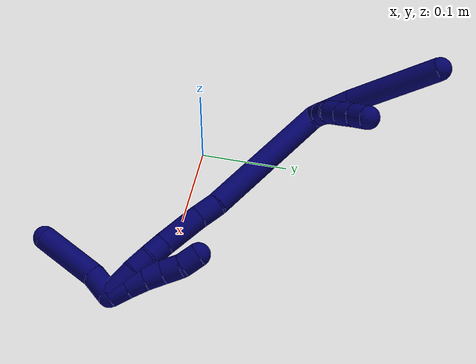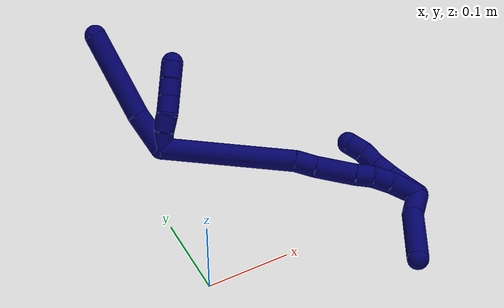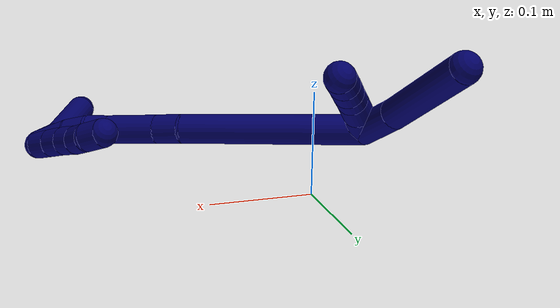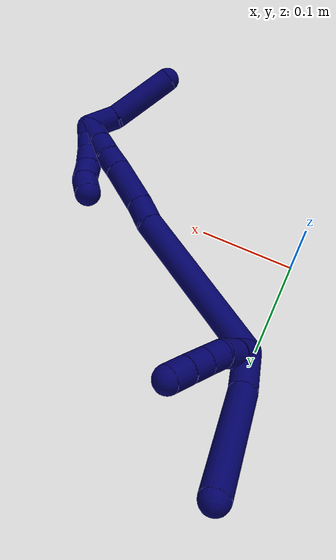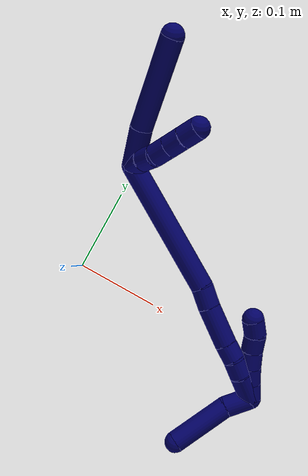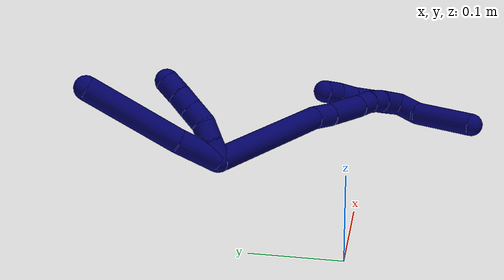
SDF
<sdf version="1.7">
 <world name="default">
  <model name="7">
   <static>0</static>
   <link name="7">
    <collision name="collision-cylinder-e_1_2_8">
     <pose>0.001279 0.004385 0.022501 -0.192452 0.055724 -0.00538</pose>
     <geometry><cylinder><radius>0.0125</radius><length>0.04592</length></cylinder></geometry>
     <surface>
      <friction><ode><mu>1.16</mu><mu2>1.16</mu2><slip1>0</slip1><slip2>0</slip2></ode></friction>
      <contact><ode><kp>1e+06</kp><kd>1</kd><max_vel>0</max_vel><min_depth>0.001</min_depth></ode></contact>
     </surface>
    </collision>
    <visual name="visual-cylinder-e_1_2_8">
     <pose>0.001279 0.004385 0.022501 -0.192452 0.055724 -0.00538</pose>
     <geometry><cylinder><radius>0.0125</radius><length>0.04592</length></cylinder></geometry>
     <material><ambient>0.003922 0 0.403922 1</ambient></material>
    </visual>
    <collision name="collision-cylinder-e_2_8_6">
     <pose>0.010629 0.015922 0.095912 -0.139584 0.155733 -0.010909</pose>
     <geometry><cylinder><radius>0.0125</radius><length>0.10408</length></cylinder></geometry>
     <surface>
      <friction><ode><mu>1.16</mu><mu2>1.16</mu2><slip1>0</slip1><slip2>0</slip2></ode></friction>
      <contact><ode><kp>1e+06</kp><kd>1</kd><max_vel>0</max_vel><min_depth>0.001</min_depth></ode></contact>
     </surface>
    </collision>
    <visual name="visual-cylinder-e_2_8_6">
     <pose>0.010629 0.015922 0.095912 -0.139584 0.155733 -0.010909</pose>
     <geometry><cylinder><radius>0.0125</radius><length>0.10408</length></cylinder></geometry>
     <material><ambient>0.003922 0 0.403922 1</ambient></material>
    </visual>
    <collision name="collision-cylinder-e_1_2_9">
     <pose>0.004275 -0.004473 0.007856 0.517607 0.441761 0.118752</pose>
     <geometry><cylinder><radius>0.0125</radius><length>0.02</length></cylinder></geometry>
     <surface>
      <friction><ode><mu>1.16</mu><mu2>1.16</mu2><slip1>0</slip1><slip2>0</slip2></ode></friction>
      <contact><ode><kp>1e+06</kp><kd>1</kd><max_vel>0</max_vel><min_depth>0.001</min_depth></ode></contact>
     </surface>
    </collision>
    <visual name="visual-cylinder-e_1_2_9">
     <pose>0.004275 -0.004473 0.007856 0.517607 0.441761 0.118752</pose>
     <geometry><cylinder><radius>0.0125</radius><length>0.02</length></cylinder></geometry>
     <material><ambient>0.003922 0 0.403922 1</ambient></material>
    </visual>
    <collision name="collision-cylinder-e_2_9_10">
     <pose>0.013868 -0.013373 0.022932 0.549982 0.560629 0.162097</pose>
     <geometry><cylinder><radius>0.0125</radius><length>0.02</length></cylinder></geometry>
     <surface>
      <friction><ode><mu>1.16</mu><mu2>1.16</mu2><slip1>0</slip1><slip2>0</slip2></ode></friction>
      <contact><ode><kp>1e+06</kp><kd>1</kd><max_vel>0</max_vel><min_depth>0.001</min_depth></ode></contact>
     </surface>
    </collision>
    <visual name="visual-cylinder-e_2_9_10">
     <pose>0.013868 -0.013373 0.022932 0.549982 0.560629 0.162097</pose>
     <geometry><cylinder><radius>0.0125</radius><length>0.02</length></cylinder></geometry>
     <material><ambient>0.003922 0 0.403922 1</ambient></material>
    </visual>
    <collision name="collision-cylinder-e_3_10_11">
     <pose>0.025499 -0.01904 0.037807 0.160737 0.683345 0.057269</pose>
     <geometry><cylinder><radius>0.0125</radius><length>0.02</length></cylinder></geometry>
     <surface>
      <friction><ode><mu>1.16</mu><mu2>1.16</mu2><slip1>0</slip1><slip2>0</slip2></ode></friction>
      <contact><ode><kp>1e+06</kp><kd>1</kd><max_vel>0</max_vel><min_depth>0.001</min_depth></ode></contact>
     </surface>
    </collision>
    <visual name="visual-cylinder-e_3_10_11">
     <pose>0.025499 -0.01904 0.037807 0.160737 0.683345 0.057269</pose>
     <geometry><cylinder><radius>0.0125</radius><length>0.02</length></cylinder></geometry>
     <material><ambient>0.003922 0 0.403922 1</ambient></material>
    </visual>
    <collision name="collision-cylinder-e_4_11_12">
     <pose>0.038018 -0.021618 0.053189 0.171313 0.669418 0.05971</pose>
     <geometry><cylinder><radius>0.0125</radius><length>0.02</length></cylinder></geometry>
     <surface>
      <friction><ode><mu>1.16</mu><mu2>1.16</mu2><slip1>0</slip1><slip2>0</slip2></ode></friction>
      <contact><ode><kp>1e+06</kp><kd>1</kd><max_vel>0</max_vel><min_depth>0.001</min_depth></ode></contact>
     </surface>
    </collision>
    <visual name="visual-cylinder-e_4_11_12">
     <pose>0.038018 -0.021618 0.053189 0.171313 0.669418 0.05971</pose>
     <geometry><cylinder><radius>0.0125</radius><length>0.02</length></cylinder></geometry>
     <material><ambient>0.003922 0 0.403922 1</ambient></material>
    </visual>
    <collision name="collision-cylinder-e_5_12_5">
     <pose>0.050671 -0.023869 0.068505 0.11986 0.700642 0.043841</pose>
     <geometry><cylinder><radius>0.0125</radius><length>0.02</length></cylinder></geometry>
     <surface>
      <friction><ode><mu>1.16</mu><mu2>1.16</mu2><slip1>0</slip1><slip2>0</slip2></ode></friction>
      <contact><ode><kp>1e+06</kp><kd>1</kd><max_vel>0</max_vel><min_depth>0.001</min_depth></ode></contact>
     </surface>
    </collision>
    <visual name="visual-cylinder-e_5_12_5">
     <pose>0.050671 -0.023869 0.068505 0.11986 0.700642 0.043841</pose>
     <geometry><cylinder><radius>0.0125</radius><length>0.02</length></cylinder></geometry>
     <material><ambient>0.003922 0 0.403922 1</ambient></material>
    </visual>
    <collision name="collision-cylinder-e_1_2_13">
     <pose>0.045964 -0.042192 -0.044862 2.38686 0.641159 1.39462</pose>
     <geometry><cylinder><radius>0.0125</radius><length>0.153694</length></cylinder></geometry>
     <surface>
      <friction><ode><mu>1.16</mu><mu2>1.16</mu2><slip1>0</slip1><slip2>0</slip2></ode></friction>
      <contact><ode><kp>1e+06</kp><kd>1</kd><max_vel>0</max_vel><min_depth>0.001</min_depth></ode></contact>
     </surface>
    </collision>
    <visual name="visual-cylinder-e_1_2_13">
     <pose>0.045964 -0.042192 -0.044862 2.38686 0.641159 1.39462</pose>
     <geometry><cylinder><radius>0.0125</radius><length>0.153694</length></cylinder></geometry>
     <material><ambient>0.003922 0 0.403922 1</ambient></material>
    </visual>
    <collision name="collision-cylinder-e_2_13_14">
     <pose>0.097332 -0.090824 -0.098284 2.49652 0.467224 1.23748</pose>
     <geometry><cylinder><radius>0.0125</radius><length>0.023995</length></cylinder></geometry>
     <surface>
      <friction><ode><mu>1.16</mu><mu2>1.16</mu2><slip1>0</slip1><slip2>0</slip2></ode></friction>
      <contact><ode><kp>1e+06</kp><kd>1</kd><max_vel>0</max_vel><min_depth>0.001</min_depth></ode></contact>
     </surface>
    </collision>
    <visual name="visual-cylinder-e_2_13_14">
     <pose>0.097332 -0.090824 -0.098284 2.49652 0.467224 1.23748</pose>
     <geometry><cylinder><radius>0.0125</radius><length>0.023995</length></cylinder></geometry>
     <material><ambient>0.003922 0 0.403922 1</ambient></material>
    </visual>
    <collision name="collision-cylinder-e_3_14_15">
     <pose>0.114879 -0.109909 -0.12215 2.45115 0.548924 1.32851</pose>
     <geometry><cylinder><radius>0.0125</radius><length>0.046547</length></cylinder></geometry>
     <surface>
      <friction><ode><mu>1.16</mu><mu2>1.16</mu2><slip1>0</slip1><slip2>0</slip2></ode></friction>
      <contact><ode><kp>1e+06</kp><kd>1</kd><max_vel>0</max_vel><min_depth>0.001</min_depth></ode></contact>
     </surface>
    </collision>
    <visual name="visual-cylinder-e_3_14_15">
     <pose>0.114879 -0.109909 -0.12215 2.45115 0.548924 1.32851</pose>
     <geometry><cylinder><radius>0.0125</radius><length>0.046547</length></cylinder></geometry>
     <material><ambient>0.003922 0 0.403922 1</ambient></material>
    </visual>
    <collision name="collision-cylinder-e_4_15_16">
     <pose>0.132799 -0.128173 -0.143526 2.39467 0.609703 1.35315</pose>
     <geometry><cylinder><radius>0.0125</radius><length>0.020177</length></cylinder></geometry>
     <surface>
      <friction><ode><mu>1.16</mu><mu2>1.16</mu2><slip1>0</slip1><slip2>0</slip2></ode></friction>
      <contact><ode><kp>1e+06</kp><kd>1</kd><max_vel>0</max_vel><min_depth>0.001</min_depth></ode></contact>
     </surface>
    </collision>
    <visual name="visual-cylinder-e_4_15_16">
     <pose>0.132799 -0.128173 -0.143526 2.39467 0.609703 1.35315</pose>
     <geometry><cylinder><radius>0.0125</radius><length>0.020177</length></cylinder></geometry>
     <material><ambient>0.003922 0 0.403922 1</ambient></material>
    </visual>
    <collision name="collision-cylinder-e_5_16_17">
     <pose>0.143745 -0.13809 -0.157382 2.63726 0.526375 1.61552</pose>
     <geometry><cylinder><radius>0.0125</radius><length>0.020575</length></cylinder></geometry>
     <surface>
      <friction><ode><mu>1.16</mu><mu2>1.16</mu2><slip1>0</slip1><slip2>0</slip2></ode></friction>
      <contact><ode><kp>1e+06</kp><kd>1</kd><max_vel>0</max_vel><min_depth>0.001</min_depth></ode></contact>
     </surface>
    </collision>
    <visual name="visual-cylinder-e_5_16_17">
     <pose>0.143745 -0.13809 -0.157382 2.63726 0.526375 1.61552</pose>
     <geometry><cylinder><radius>0.0125</radius><length>0.020575</length></cylinder></geometry>
     <material><ambient>0.003922 0 0.403922 1</ambient></material>
    </visual>
    <collision name="collision-cylinder-e_6_17_1">
     <pose>0.157692 -0.147224 -0.179523 2.81665 0.525297 2.0466</pose>
     <geometry><cylinder><radius>0.0125</radius><length>0.035013</length></cylinder></geometry>
     <surface>
      <friction><ode><mu>1.16</mu><mu2>1.16</mu2><slip1>0</slip1><slip2>0</slip2></ode></friction>
      <contact><ode><kp>1e+06</kp><kd>1</kd><max_vel>0</max_vel><min_depth>0.001</min_depth></ode></contact>
     </surface>
    </collision>
    <visual name="visual-cylinder-e_6_17_1">
     <pose>0.157692 -0.147224 -0.179523 2.81665 0.525297 2.0466</pose>
     <geometry><cylinder><radius>0.0125</radius><length>0.035013</length></cylinder></geometry>
     <material><ambient>0.003922 0 0.403922 1</ambient></material>
    </visual>
    <collision name="collision-cylinder-e_1_1_18">
     <pose>0.164446 -0.147595 -0.18516 -0.473261 -0.203913 0.049335</pose>
     <geometry><cylinder><radius>0.0125</radius><length>0.02</length></cylinder></geometry>
     <surface>
      <friction><ode><mu>1.16</mu><mu2>1.16</mu2><slip1>0</slip1><slip2>0</slip2></ode></friction>
      <contact><ode><kp>1e+06</kp><kd>1</kd><max_vel>0</max_vel><min_depth>0.001</min_depth></ode></contact>
     </surface>
    </collision>
    <visual name="visual-cylinder-e_1_1_18">
     <pose>0.164446 -0.147595 -0.18516 -0.473261 -0.203913 0.049335</pose>
     <geometry><cylinder><radius>0.0125</radius><length>0.02</length></cylinder></geometry>
     <material><ambient>0.003922 0 0.403922 1</ambient></material>
    </visual>
    <collision name="collision-cylinder-e_2_18_19">
     <pose>0.160903 -0.138812 -0.167553 -0.452325 -0.152376 0.035126</pose>
     <geometry><cylinder><radius>0.0125</radius><length>0.02</length></cylinder></geometry>
     <surface>
      <friction><ode><mu>1.16</mu><mu2>1.16</mu2><slip1>0</slip1><slip2>0</slip2></ode></friction>
      <contact><ode><kp>1e+06</kp><kd>1</kd><max_vel>0</max_vel><min_depth>0.001</min_depth></ode></contact>
     </surface>
    </collision>
    <visual name="visual-cylinder-e_2_18_19">
     <pose>0.160903 -0.138812 -0.167553 -0.452325 -0.152376 0.035126</pose>
     <geometry><cylinder><radius>0.0125</radius><length>0.02</length></cylinder></geometry>
     <material><ambient>0.003922 0 0.403922 1</ambient></material>
    </visual>
    <collision name="collision-cylinder-e_3_19_20">
     <pose>0.158654 -0.129838 -0.149842 -0.48552 -0.07317 0.018128</pose>
     <geometry><cylinder><radius>0.0125</radius><length>0.02</length></cylinder></geometry>
     <surface>
      <friction><ode><mu>1.16</mu><mu2>1.16</mu2><slip1>0</slip1><slip2>0</slip2></ode></friction>
      <contact><ode><kp>1e+06</kp><kd>1</kd><max_vel>0</max_vel><min_depth>0.001</min_depth></ode></contact>
     </surface>
    </collision>
    <visual name="visual-cylinder-e_3_19_20">
     <pose>0.158654 -0.129838 -0.149842 -0.48552 -0.07317 0.018128</pose>
     <geometry><cylinder><radius>0.0125</radius><length>0.02</length></cylinder></geometry>
     <material><ambient>0.003922 0 0.403922 1</ambient></material>
    </visual>
    <collision name="collision-cylinder-e_4_20_21">
     <pose>0.157898 -0.121496 -0.131727 -0.377725 -0.00245 0.000468</pose>
     <geometry><cylinder><radius>0.0125</radius><length>0.02</length></cylinder></geometry>
     <surface>
      <friction><ode><mu>1.16</mu><mu2>1.16</mu2><slip1>0</slip1><slip2>0</slip2></ode></friction>
      <contact><ode><kp>1e+06</kp><kd>1</kd><max_vel>0</max_vel><min_depth>0.001</min_depth></ode></contact>
     </surface>
    </collision>
    <visual name="visual-cylinder-e_4_20_21">
     <pose>0.157898 -0.121496 -0.131727 -0.377725 -0.00245 0.000468</pose>
     <geometry><cylinder><radius>0.0125</radius><length>0.02</length></cylinder></geometry>
     <material><ambient>0.003922 0 0.403922 1</ambient></material>
    </visual>
    <collision name="collision-cylinder-e_5_21_4">
     <pose>0.154712 -0.114093 -0.113702 -0.402341 -0.321708 0.066153</pose>
     <geometry><cylinder><radius>0.0125</radius><length>0.02</length></cylinder></geometry>
     <surface>
      <friction><ode><mu>1.16</mu><mu2>1.16</mu2><slip1>0</slip1><slip2>0</slip2></ode></friction>
      <contact><ode><kp>1e+06</kp><kd>1</kd><max_vel>0</max_vel><min_depth>0.001</min_depth></ode></contact>
     </surface>
    </collision>
    <visual name="visual-cylinder-e_5_21_4">
     <pose>0.154712 -0.114093 -0.113702 -0.402341 -0.321708 0.066153</pose>
     <geometry><cylinder><radius>0.0125</radius><length>0.02</length></cylinder></geometry>
     <material><ambient>0.003922 0 0.403922 1</ambient></material>
    </visual>
    <collision name="collision-cylinder-e_1_1_22">
     <pose>0.152928 -0.155178 -0.200122 2.67847 -1.09483 -2.4034</pose>
     <geometry><cylinder><radius>0.0125</radius><length>0.030472</length></cylinder></geometry>
     <surface>
      <friction><ode><mu>1.16</mu><mu2>1.16</mu2><slip1>0</slip1><slip2>0</slip2></ode></friction>
      <contact><ode><kp>1e+06</kp><kd>1</kd><max_vel>0</max_vel><min_depth>0.001</min_depth></ode></contact>
     </surface>
    </collision>
    <visual name="visual-cylinder-e_1_1_22">
     <pose>0.152928 -0.155178 -0.200122 2.67847 -1.09483 -2.4034</pose>
     <geometry><cylinder><radius>0.0125</radius><length>0.030472</length></cylinder></geometry>
     <material><ambient>0.003922 0 0.403922 1</ambient></material>
    </visual>
    <collision name="collision-cylinder-e_2_22_3">
     <pose>0.112982 -0.173379 -0.223217 2.41147 -0.862554 -1.7554</pose>
     <geometry><cylinder><radius>0.0125</radius><length>0.069528</length></cylinder></geometry>
     <surface>
      <friction><ode><mu>1.16</mu><mu2>1.16</mu2><slip1>0</slip1><slip2>0</slip2></ode></friction>
      <contact><ode><kp>1e+06</kp><kd>1</kd><max_vel>0</max_vel><min_depth>0.001</min_depth></ode></contact>
     </surface>
    </collision>
    <visual name="visual-cylinder-e_2_22_3">
     <pose>0.112982 -0.173379 -0.223217 2.41147 -0.862554 -1.7554</pose>
     <geometry><cylinder><radius>0.0125</radius><length>0.069528</length></cylinder></geometry>
     <material><ambient>0.003922 0 0.403922 1</ambient></material>
    </visual>
    <collision name="collision-sphere-3">
     <pose>0.086579 -0.188462 -0.240066 0 -0 0</pose>
     <geometry><sphere><radius>0.0125</radius></sphere></geometry>
     <surface>
      <friction><ode><mu>1.16</mu><mu2>1.16</mu2><slip1>0</slip1><slip2>0</slip2></ode></friction>
      <contact><ode><kp>1e+06</kp><kd>1</kd><max_vel>0</max_vel><min_depth>0.001</min_depth></ode></contact>
     </surface>
    </collision>
    <visual name="visual-sphere-3">
     <pose>0.086579 -0.188462 -0.240066 0 -0 0</pose>
     <geometry><sphere><radius>0.0125</radius></sphere></geometry>
     <material><ambient>0.003922 0 0.403922 1</ambient></material>
    </visual>
    <collision name="collision-sphere-22">
     <pose>0.139386 -0.158296 -0.206367 0 -0 0</pose>
     <geometry><sphere><radius>0.0125</radius></sphere></geometry>
     <surface>
      <friction><ode><mu>1.16</mu><mu2>1.16</mu2><slip1>0</slip1><slip2>0</slip2></ode></friction>
      <contact><ode><kp>1e+06</kp><kd>1</kd><max_vel>0</max_vel><min_depth>0.001</min_depth></ode></contact>
     </surface>
    </collision>
    <visual name="visual-sphere-22">
     <pose>0.139386 -0.158296 -0.206367 0 -0 0</pose>
     <geometry><sphere><radius>0.0125</radius></sphere></geometry>
     <material><ambient>0.003922 0 0.403922 1</ambient></material>
    </visual>
    <collision name="collision-sphere-4">
     <pose>0.15155 -0.110378 -0.104973 0 -0 0</pose>
     <geometry><sphere><radius>0.0125</radius></sphere></geometry>
     <surface>
      <friction><ode><mu>1.16</mu><mu2>1.16</mu2><slip1>0</slip1><slip2>0</slip2></ode></friction>
      <contact><ode><kp>1e+06</kp><kd>1</kd><max_vel>0</max_vel><min_depth>0.001</min_depth></ode></contact>
     </surface>
    </collision>
    <visual name="visual-sphere-4">
     <pose>0.15155 -0.110378 -0.104973 0 -0 0</pose>
     <geometry><sphere><radius>0.0125</radius></sphere></geometry>
     <material><ambient>0.003922 0 0.403922 1</ambient></material>
    </visual>
    <collision name="collision-sphere-21">
     <pose>0.157874 -0.117808 -0.122431 0 -0 0</pose>
     <geometry><sphere><radius>0.0125</radius></sphere></geometry>
     <surface>
      <friction><ode><mu>1.16</mu><mu2>1.16</mu2><slip1>0</slip1><slip2>0</slip2></ode></friction>
      <contact><ode><kp>1e+06</kp><kd>1</kd><max_vel>0</max_vel><min_depth>0.001</min_depth></ode></contact>
     </surface>
    </collision>
    <visual name="visual-sphere-21">
     <pose>0.157874 -0.117808 -0.122431 0 -0 0</pose>
     <geometry><sphere><radius>0.0125</radius></sphere></geometry>
     <material><ambient>0.003922 0 0.403922 1</ambient></material>
    </visual>
    <collision name="collision-sphere-20">
     <pose>0.157923 -0.125184 -0.141022 0 -0 0</pose>
     <geometry><sphere><radius>0.0125</radius></sphere></geometry>
     <surface>
      <friction><ode><mu>1.16</mu><mu2>1.16</mu2><slip1>0</slip1><slip2>0</slip2></ode></friction>
      <contact><ode><kp>1e+06</kp><kd>1</kd><max_vel>0</max_vel><min_depth>0.001</min_depth></ode></contact>
     </surface>
    </collision>
    <visual name="visual-sphere-20">
     <pose>0.157923 -0.125184 -0.141022 0 -0 0</pose>
     <geometry><sphere><radius>0.0125</radius></sphere></geometry>
     <material><ambient>0.003922 0 0.403922 1</ambient></material>
    </visual>
    <collision name="collision-sphere-11">
     <pose>0.031813 -0.020281 0.045462 0 -0 0</pose>
     <geometry><sphere><radius>0.0125</radius></sphere></geometry>
     <surface>
      <friction><ode><mu>1.16</mu><mu2>1.16</mu2><slip1>0</slip1><slip2>0</slip2></ode></friction>
      <contact><ode><kp>1e+06</kp><kd>1</kd><max_vel>0</max_vel><min_depth>0.001</min_depth></ode></contact>
     </surface>
    </collision>
    <visual name="visual-sphere-11">
     <pose>0.031813 -0.020281 0.045462 0 -0 0</pose>
     <geometry><sphere><radius>0.0125</radius></sphere></geometry>
     <material><ambient>0.003922 0 0.403922 1</ambient></material>
    </visual>
    <collision name="collision-sphere-10">
     <pose>0.019185 -0.017799 0.030152 0 -0 0</pose>
     <geometry><sphere><radius>0.0125</radius></sphere></geometry>
     <surface>
      <friction><ode><mu>1.16</mu><mu2>1.16</mu2><slip1>0</slip1><slip2>0</slip2></ode></friction>
      <contact><ode><kp>1e+06</kp><kd>1</kd><max_vel>0</max_vel><min_depth>0.001</min_depth></ode></contact>
     </surface>
    </collision>
    <visual name="visual-sphere-10">
     <pose>0.019185 -0.017799 0.030152 0 -0 0</pose>
     <geometry><sphere><radius>0.0125</radius></sphere></geometry>
     <material><ambient>0.003922 0 0.403922 1</ambient></material>
    </visual>
    <collision name="collision-sphere-6">
     <pose>0.018701 0.023075 0.146823 0 -0 0</pose>
     <geometry><sphere><radius>0.0125</radius></sphere></geometry>
     <surface>
      <friction><ode><mu>1.16</mu><mu2>1.16</mu2><slip1>0</slip1><slip2>0</slip2></ode></friction>
      <contact><ode><kp>1e+06</kp><kd>1</kd><max_vel>0</max_vel><min_depth>0.001</min_depth></ode></contact>
     </surface>
    </collision>
    <visual name="visual-sphere-6">
     <pose>0.018701 0.023075 0.146823 0 -0 0</pose>
     <geometry><sphere><radius>0.0125</radius></sphere></geometry>
     <material><ambient>0.003922 0 0.403922 1</ambient></material>
    </visual>
    <collision name="collision-sphere-9">
     <pose>0.008551 -0.008946 0.015712 0 -0 0</pose>
     <geometry><sphere><radius>0.0125</radius></sphere></geometry>
     <surface>
      <friction><ode><mu>1.16</mu><mu2>1.16</mu2><slip1>0</slip1><slip2>0</slip2></ode></friction>
      <contact><ode><kp>1e+06</kp><kd>1</kd><max_vel>0</max_vel><min_depth>0.001</min_depth></ode></contact>
     </surface>
    </collision>
    <visual name="visual-sphere-9">
     <pose>0.008551 -0.008946 0.015712 0 -0 0</pose>
     <geometry><sphere><radius>0.0125</radius></sphere></geometry>
     <material><ambient>0.003922 0 0.403922 1</ambient></material>
    </visual>
    <collision name="collision-sphere-2">
     <geometry><sphere><radius>0.0125</radius></sphere></geometry>
     <surface>
      <friction><ode><mu>1.16</mu><mu2>1.16</mu2><slip1>0</slip1><slip2>0</slip2></ode></friction>
      <contact><ode><kp>1e+06</kp><kd>1</kd><max_vel>0</max_vel><min_depth>0.001</min_depth></ode></contact>
     </surface>
    </collision>
    <visual name="visual-sphere-2">
     <geometry><sphere><radius>0.0125</radius></sphere></geometry>
     <material><ambient>0.003922 0 0.403922 1</ambient></material>
    </visual>
    <collision name="collision-sphere-19">
     <pose>0.159385 -0.134492 -0.158663 0 -0 0</pose>
     <geometry><sphere><radius>0.0125</radius></sphere></geometry>
     <surface>
      <friction><ode><mu>1.16</mu><mu2>1.16</mu2><slip1>0</slip1><slip2>0</slip2></ode></friction>
      <contact><ode><kp>1e+06</kp><kd>1</kd><max_vel>0</max_vel><min_depth>0.001</min_depth></ode></contact>
     </surface>
    </collision>
    <visual name="visual-sphere-19">
     <pose>0.159385 -0.134492 -0.158663 0 -0 0</pose>
     <geometry><sphere><radius>0.0125</radius></sphere></geometry>
     <material><ambient>0.003922 0 0.403922 1</ambient></material>
    </visual>
    <collision name="collision-sphere-8">
     <pose>0.002558 0.008769 0.045002 0 -0 0</pose>
     <geometry><sphere><radius>0.0125</radius></sphere></geometry>
     <surface>
      <friction><ode><mu>1.16</mu><mu2>1.16</mu2><slip1>0</slip1><slip2>0</slip2></ode></friction>
      <contact><ode><kp>1e+06</kp><kd>1</kd><max_vel>0</max_vel><min_depth>0.001</min_depth></ode></contact>
     </surface>
    </collision>
    <visual name="visual-sphere-8">
     <pose>0.002558 0.008769 0.045002 0 -0 0</pose>
     <geometry><sphere><radius>0.0125</radius></sphere></geometry>
     <material><ambient>0.003922 0 0.403922 1</ambient></material>
    </visual>
    <collision name="collision-sphere-12">
     <pose>0.044223 -0.022955 0.060916 0 -0 0</pose>
     <geometry><sphere><radius>0.0125</radius></sphere></geometry>
     <surface>
      <friction><ode><mu>1.16</mu><mu2>1.16</mu2><slip1>0</slip1><slip2>0</slip2></ode></friction>
      <contact><ode><kp>1e+06</kp><kd>1</kd><max_vel>0</max_vel><min_depth>0.001</min_depth></ode></contact>
     </surface>
    </collision>
    <visual name="visual-sphere-12">
     <pose>0.044223 -0.022955 0.060916 0 -0 0</pose>
     <geometry><sphere><radius>0.0125</radius></sphere></geometry>
     <material><ambient>0.003922 0 0.403922 1</ambient></material>
    </visual>
    <collision name="collision-sphere-5">
     <pose>0.057118 -0.024783 0.076095 0 -0 0</pose>
     <geometry><sphere><radius>0.0125</radius></sphere></geometry>
     <surface>
      <friction><ode><mu>1.16</mu><mu2>1.16</mu2><slip1>0</slip1><slip2>0</slip2></ode></friction>
      <contact><ode><kp>1e+06</kp><kd>1</kd><max_vel>0</max_vel><min_depth>0.001</min_depth></ode></contact>
     </surface>
    </collision>
    <visual name="visual-sphere-5">
     <pose>0.057118 -0.024783 0.076095 0 -0 0</pose>
     <geometry><sphere><radius>0.0125</radius></sphere></geometry>
     <material><ambient>0.003922 0 0.403922 1</ambient></material>
    </visual>
    <collision name="collision-sphere-13">
     <pose>0.091928 -0.084384 -0.089725 0 -0 0</pose>
     <geometry><sphere><radius>0.0125</radius></sphere></geometry>
     <surface>
      <friction><ode><mu>1.16</mu><mu2>1.16</mu2><slip1>0</slip1><slip2>0</slip2></ode></friction>
      <contact><ode><kp>1e+06</kp><kd>1</kd><max_vel>0</max_vel><min_depth>0.001</min_depth></ode></contact>
     </surface>
    </collision>
    <visual name="visual-sphere-13">
     <pose>0.091928 -0.084384 -0.089725 0 -0 0</pose>
     <geometry><sphere><radius>0.0125</radius></sphere></geometry>
     <material><ambient>0.003922 0 0.403922 1</ambient></material>
    </visual>
    <collision name="collision-sphere-14">
     <pose>0.102736 -0.097264 -0.106843 0 -0 0</pose>
     <geometry><sphere><radius>0.0125</radius></sphere></geometry>
     <surface>
      <friction><ode><mu>1.16</mu><mu2>1.16</mu2><slip1>0</slip1><slip2>0</slip2></ode></friction>
      <contact><ode><kp>1e+06</kp><kd>1</kd><max_vel>0</max_vel><min_depth>0.001</min_depth></ode></contact>
     </surface>
    </collision>
    <visual name="visual-sphere-14">
     <pose>0.102736 -0.097264 -0.106843 0 -0 0</pose>
     <geometry><sphere><radius>0.0125</radius></sphere></geometry>
     <material><ambient>0.003922 0 0.403922 1</ambient></material>
    </visual>
    <collision name="collision-sphere-15">
     <pose>0.127023 -0.122554 -0.137457 0 -0 0</pose>
     <geometry><sphere><radius>0.0125</radius></sphere></geometry>
     <surface>
      <friction><ode><mu>1.16</mu><mu2>1.16</mu2><slip1>0</slip1><slip2>0</slip2></ode></friction>
      <contact><ode><kp>1e+06</kp><kd>1</kd><max_vel>0</max_vel><min_depth>0.001</min_depth></ode></contact>
     </surface>
    </collision>
    <visual name="visual-sphere-15">
     <pose>0.127023 -0.122554 -0.137457 0 -0 0</pose>
     <geometry><sphere><radius>0.0125</radius></sphere></geometry>
     <material><ambient>0.003922 0 0.403922 1</ambient></material>
    </visual>
    <collision name="collision-sphere-16">
     <pose>0.138576 -0.133792 -0.149594 0 -0 0</pose>
     <geometry><sphere><radius>0.0125</radius></sphere></geometry>
     <surface>
      <friction><ode><mu>1.16</mu><mu2>1.16</mu2><slip1>0</slip1><slip2>0</slip2></ode></friction>
      <contact><ode><kp>1e+06</kp><kd>1</kd><max_vel>0</max_vel><min_depth>0.001</min_depth></ode></contact>
     </surface>
    </collision>
    <visual name="visual-sphere-16">
     <pose>0.138576 -0.133792 -0.149594 0 -0 0</pose>
     <geometry><sphere><radius>0.0125</radius></sphere></geometry>
     <material><ambient>0.003922 0 0.403922 1</ambient></material>
    </visual>
    <collision name="collision-sphere-17">
     <pose>0.148913 -0.142388 -0.165169 0 -0 0</pose>
     <geometry><sphere><radius>0.0125</radius></sphere></geometry>
     <surface>
      <friction><ode><mu>1.16</mu><mu2>1.16</mu2><slip1>0</slip1><slip2>0</slip2></ode></friction>
      <contact><ode><kp>1e+06</kp><kd>1</kd><max_vel>0</max_vel><min_depth>0.001</min_depth></ode></contact>
     </surface>
    </collision>
    <visual name="visual-sphere-17">
     <pose>0.148913 -0.142388 -0.165169 0 -0 0</pose>
     <geometry><sphere><radius>0.0125</radius></sphere></geometry>
     <material><ambient>0.003922 0 0.403922 1</ambient></material>
    </visual>
    <collision name="collision-sphere-1">
     <pose>0.166471 -0.152059 -0.193876 0 -0 0</pose>
     <geometry><sphere><radius>0.0125</radius></sphere></geometry>
     <surface>
      <friction><ode><mu>1.16</mu><mu2>1.16</mu2><slip1>0</slip1><slip2>0</slip2></ode></friction>
      <contact><ode><kp>1e+06</kp><kd>1</kd><max_vel>0</max_vel><min_depth>0.001</min_depth></ode></contact>
     </surface>
    </collision>
    <visual name="visual-sphere-1">
     <pose>0.166471 -0.152059 -0.193876 0 -0 0</pose>
     <geometry><sphere><radius>0.0125</radius></sphere></geometry>
     <material><ambient>0.003922 0 0.403922 1</ambient></material>
    </visual>
    <collision name="collision-sphere-18">
     <pose>0.162421 -0.143132 -0.176443 0 -0 0</pose>
     <geometry><sphere><radius>0.0125</radius></sphere></geometry>
     <surface>
      <friction><ode><mu>1.16</mu><mu2>1.16</mu2><slip1>0</slip1><slip2>0</slip2></ode></friction>
      <contact><ode><kp>1e+06</kp><kd>1</kd><max_vel>0</max_vel><min_depth>0.001</min_depth></ode></contact>
     </surface>
    </collision>
    <visual name="visual-sphere-18">
     <pose>0.162421 -0.143132 -0.176443 0 -0 0</pose>
     <geometry><sphere><radius>0.0125</radius></sphere></geometry>
     <material><ambient>0.003922 0 0.403922 1</ambient></material>
    </visual>
    <inertial>
     <pose>0.077553 -0.071961 -0.065486 0 -0 0</pose>
     <mass>0.75</mass>
     <inertia><ixx>0.000409</ixx><ixy>0</ixy><ixz>0</ixz><iyy>0.00046</iyy><iyz>0</iyz><izz>-5e-06</izz></inertia>
    </inertial>
   </link>
   <pose>0.006497 0.129338 0.103951 -0.815992 0.128647 0.389056</pose>
  </model>
 </world>
</sdf>
